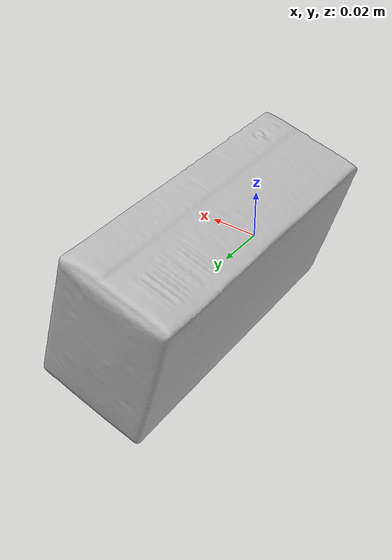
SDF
<?xml version='1.0'?>
<sdf version="1.4">
  <model name="FruitTea">
    <static>false</static>
    <link name="link">
      <inertial>
        <pose>0.0062479159262870156 0.024435113076531772 -0.002938641913786321 1.577661360795101 0.27791970957911943 -3.1276542839754446</pose>
        <mass>0.039857131332635326</mass>
        <inertia>
          <ixx>6.623661249692359e-05</ixx>
          <ixy>5.084903525132751e-22</ixy>
          <ixz>-5.187691638372975e-24</ixz>
          <iyy>5.9346674828478265e-05</iyy>
          <iyz>-6.847298723519196e-21</iyz>
          <izz>2.1881399560292085e-05</izz>
        </inertia>
      </inertial>
      <collision name="collision">
        <geometry>
          <mesh>
            <!-- Use a downsampled mesh for collisions -->
            <uri>model:///FruitTea/FruitTea_250_collision.obj</uri>
	        </mesh>
        </geometry>
        <surface>
      </surface>
      </collision>
      <visual name="visual">
        <geometry>
          <mesh>
            <uri>model:///FruitTea/FruitTea_25k_tex.obj</uri>
	        </mesh>
        </geometry>
        <material>
          <script>
            <uri>model:///FruitTea/FruitTea.material</uri>
            <name>FruitTea</name>
          </script>
        </material>
      </visual>
    </link>
  </model>
</sdf>
